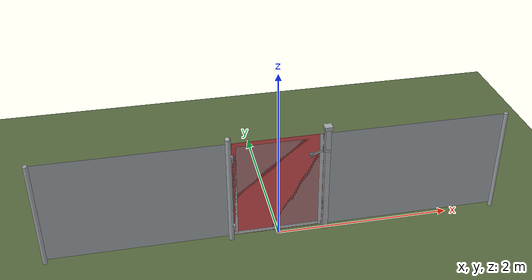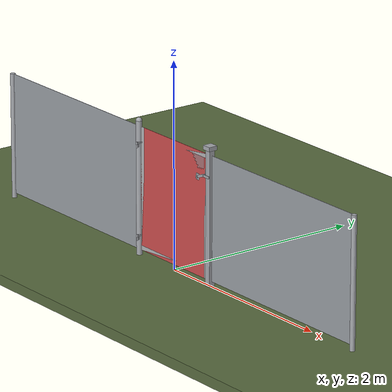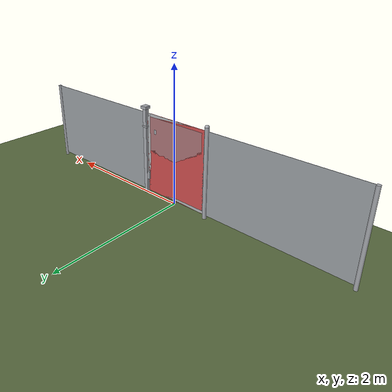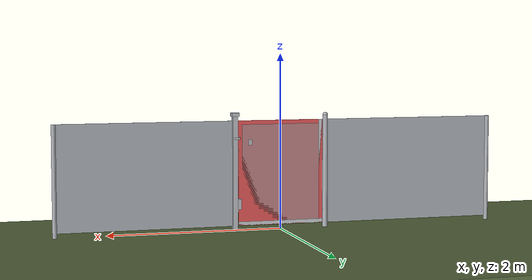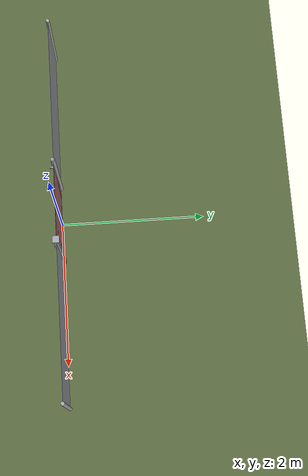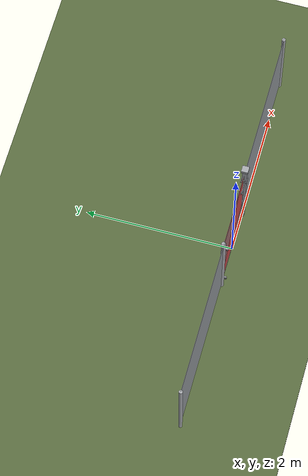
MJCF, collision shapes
<?xml version="1.0" ?>
<mujoco model="db0034_gate_swing_full">
  <compiler angle="radian" meshdir="../../hardware" texturedir="../../textures" autolimits="true" inertiafromgeom="false"/>
  <option timestep="0.002" integrator="implicitfast" cone="elliptic" impratio="10" noslip_iterations="3">
    <flag multiccd="enable"/>
  </option>
  <size memory="16M"/>
  <default>
    <geom condim="4" solref="0.005 1" solimp="0.95 0.99 0.001"/>
    <joint solreflimit="0.005 1" solimplimit="0.95 0.99 0.001"/>
    <tendon solreflimit="0.005 1"/>
    <equality solref="0.002 1"/>
  </default>
  <visual>
    <headlight ambient="0.4 0.4 0.4" diffuse="0.7 0.7 0.7" specular="0.2 0.2 0.2"/>
    <quality shadowsize="4096"/>
    <map znear="0.01" zfar="60"/>
  </visual>
  <asset>
    <mesh name="strap_hinge_3c1a7c1a5f" file="strap_hinge_3c1a7c1a5f.obj"/>
    <material name="mat_floor" rgba="0.35 0.42 0.25 1" specular="0.2" shininess="0.15" reflectance="0"/>
    <material name="mat_wall" rgba="0.78 0.76 0.7 1" specular="0.2" shininess="0.1" reflectance="0"/>
    <material name="mat_leaf" rgba="0.7 0.71 0.72 1" specular="0.74" shininess="0.5" reflectance="0.36"/>
    <material name="mat_mesh_infill" rgba="0.6 0.62 0.64 0.55" specular="0.68" shininess="0.3" reflectance="0.1"/>
    <material name="mat_hinge" rgba="0.65 0.66 0.68 1" specular="0.74" shininess="0.5" reflectance="0.36"/>
    <material name="mat_op_steel_galvanized" rgba="0.65 0.66 0.68 1" specular="0.74" shininess="0.5" reflectance="0.36"/>
    <material name="mat_frame" rgba="0.65 0.66 0.68 1" specular="0.74" shininess="0.5" reflectance="0.36"/>
    <material name="mat_fence_mesh" rgba="0.6 0.62 0.64 0.5" specular="0.68" shininess="0.3" reflectance="0.1"/>
    <texture name="skybox" type="skybox" builtin="gradient" rgb1="0.6 0.7 0.85" rgb2="0.9 0.92 0.95" width="256" height="256"/>
  </asset>
  <worldbody>
    <light name="sun" pos="1.5 -2.5 4" dir="-0.3 0.5 -0.8" directional="true" diffuse="0.8 0.8 0.8" specular="0.3 0.3 0.3" castshadow="true"/>
    <light name="fill" pos="-1.5 2.5 3" dir="0.3 -0.5 -0.7" directional="true" diffuse="0.35 0.35 0.4" castshadow="false"/>
    <camera name="robot_view" pos="0 -1.875 1.135" xyaxes="1 0 0 0 0.26963 0.962964" fovy="52"/>
    <camera name="far_view" pos="0 1.875 1.135" xyaxes="-1 0 0 0 -0.26963 0.962964" fovy="52"/>
    <camera name="iso" pos="1.425 -1.575 1.435" xyaxes="0.741536 0.670913 0 -0.242917 0.268487 0.932151" fovy="46"/>
    <camera name="detail_handle" pos="0.666 -0.8135 1.385" xyaxes="0.97561 0.219512 0 -0.070934 0.315262 0.94635" fovy="38"/>
    <geom name="floor" type="box" size="6 6 0.05" pos="0 0 -0.05" material="mat_floor" group="0" contype="1" conaffinity="1" friction="0.8 0.005 0.0001" density="2400"/>
    <geom name="hinge_pintle_0" type="cylinder" size="0.008 0.02" pos="-0.503 -0.05 0.174" material="mat_hinge" group="1" contype="0" conaffinity="0" density="7850"/>
    <geom name="hinge_pintle_1" type="cylinder" size="0.008 0.02" pos="-0.503 -0.05 1.074" material="mat_hinge" group="1" contype="0" conaffinity="0" density="7850"/>
    <geom name="post_hinge" type="cylinder" size="0.03 0.65" pos="-0.536 0 0.65" material="mat_frame" group="0" contype="1" conaffinity="1" friction="0.6 0.005 0.0001" density="800"/>
    <geom name="post_hinge_cap" type="sphere" size="0.03" pos="-0.536 0 1.3" material="mat_frame" group="1" contype="0" conaffinity="0" density="800"/>
    <geom name="post_latch" type="box" size="0.03 0.03 0.65" pos="0.536 0 0.65" material="mat_frame" group="0" contype="1" conaffinity="1" friction="0.6 0.005 0.0001" density="800"/>
    <geom name="post_latch_cap" type="box" size="0.045 0.045 0.02" pos="0.536 0 1.32" material="mat_frame" group="1" contype="0" conaffinity="0" density="800"/>
    <geom name="gate_stop" type="box" size="0.02 0.012 0.06" pos="0.486 0.0135 0.3" material="mat_frame" group="0" contype="1" conaffinity="1" friction="0.6 0.005 0.0001" density="800"/>
    <geom name="fence_l" type="box" size="1 0.002 0.6" pos="-1.566 0 0.65" material="mat_fence_mesh" group="0" contype="1" conaffinity="1" friction="0.6 0.005 0.0001" density="100"/>
    <geom name="fence_post_l" type="cylinder" size="0.025 0.625" pos="-2.566 0 0.625" material="mat_frame" group="0" contype="1" conaffinity="1" friction="0.6 0.005 0.0001" density="7850"/>
    <geom name="fence_r" type="box" size="1 0.002 0.6" pos="1.566 0 0.65" material="mat_fence_mesh" group="0" contype="1" conaffinity="1" friction="0.6 0.005 0.0001" density="100"/>
    <geom name="fence_post_r" type="cylinder" size="0.025 0.625" pos="2.566 0 0.625" material="mat_frame" group="0" contype="1" conaffinity="1" friction="0.6 0.005 0.0001" density="7850"/>
    <geom name="hinge_pintle_0_strap_0" type="box" size="0.0064 0.0065 0.016" pos="-0.503 -0.036 0.174" material="mat_hinge" group="1" contype="0" conaffinity="0" density="7850"/>
    <geom name="hinge_pintle_1_strap_0" type="box" size="0.0064 0.0065 0.016" pos="-0.503 -0.036 1.074" material="mat_hinge" group="1" contype="0" conaffinity="0" density="7850"/>
    <geom name="gate_stop_strap_0" type="box" size="0.0305 0.01255 0.048" pos="0.536 0.01055 0.3" material="mat_frame" group="1" contype="0" conaffinity="0" density="7850"/>
    <site name="approach_point" pos="0 -1.5 0" quat="1 0 0 0" size="0.05" rgba="0.2 0.9 0.2 0.5" group="4"/>
    <site name="goal_point" pos="0 1.5 0" quat="1 0 0 0" size="0.05" rgba="0.2 0.9 0.2 0.5" group="4"/>
    <site name="door_plane_center" pos="0 0 0.61" quat="1 0 0 0" size="0.02" rgba="0.2 0.9 0.2 0.5" group="4"/>
    <body name="leaf" pos="-0.506 0 0">
      <inertial pos="0.383021 -0.004185 0.663803" mass="4.533837" quat="0.455894 0.44848 0.54683 -0.540373" diaginertia="0.490568875 0.658353386 1.147894224"/>
      <joint name="leaf_hinge" type="hinge" axis="0 0 -1" pos="0.003 -0.05 0" limited="true" range="0 1.570796" damping="0.26672" frictionloss="0.14942" armature="0.02"/>
      <geom name="leaf_slab_col" type="box" size="0.5 0.0015 0.6" pos="0.503 0 0.65" material="mat_leaf" group="3" contype="1" conaffinity="1" rgba="0.8 0.3 0.3 0.25" friction="0.45 0.005 0.0001" density="1"/>
      <geom name="leaf_rail_b" type="box" size="0.5 0.0015 0.0225" pos="0.503 0 0.0725" material="mat_leaf" group="1" contype="0" conaffinity="0" density="1"/>
      <geom name="leaf_rail_t" type="box" size="0.5 0.0015 0.0225" pos="0.503 0 1.2275" material="mat_leaf" group="1" contype="0" conaffinity="0" density="1"/>
      <geom name="leaf_stile_h" type="box" size="0.0225 0.0015 0.6" pos="0.0255 0 0.65" material="mat_leaf" group="1" contype="0" conaffinity="0" density="1"/>
      <geom name="leaf_stile_l" type="box" size="0.0225 0.0015 0.6" pos="0.9805 0 0.65" material="mat_leaf" group="1" contype="0" conaffinity="0" density="1"/>
      <geom name="leaf_mesh" type="box" size="0.455 0.0015 0.555" pos="0.503 0 0.65" material="mat_mesh_infill" group="1" contype="0" conaffinity="0" density="1"/>
      <geom name="hinge_strap_0" type="mesh" mesh="strap_hinge_3c1a7c1a5f" pos="0.003 -0.0045 0.2" material="mat_hinge" group="1" contype="0" conaffinity="0" density="7850"/>
      <geom name="hinge_strap_eye_0" type="cylinder" size="0.011 0.012" pos="0.003 -0.05 0.2" material="mat_hinge" group="1" contype="0" conaffinity="0" density="7850"/>
      <geom name="hinge_strap_neck_0" type="box" size="0.012 0.02675 0.006" pos="0.003 -0.02725 0.2" material="mat_hinge" group="1" contype="0" conaffinity="0" density="7850"/>
      <geom name="hinge_strap_1" type="mesh" mesh="strap_hinge_3c1a7c1a5f" pos="0.003 -0.0045 1.1" material="mat_hinge" group="1" contype="0" conaffinity="0" density="7850"/>
      <geom name="hinge_strap_eye_1" type="cylinder" size="0.011 0.012" pos="0.003 -0.05 1.1" material="mat_hinge" group="1" contype="0" conaffinity="0" density="7850"/>
      <geom name="hinge_strap_neck_1" type="box" size="0.012 0.02675 0.006" pos="0.003 -0.02725 1.1" material="mat_hinge" group="1" contype="0" conaffinity="0" density="7850"/>
      <geom name="leaf_fork_strap_n" type="box" size="0.02 0.002 0.03" pos="0.863 -0.0035 1" material="mat_op_steel_galvanized" group="1" contype="0" conaffinity="0" density="7800"/>
      <geom name="leaf_fork_strap_p" type="box" size="0.02 0.002 0.03" pos="0.863 0.0035 1" material="mat_op_steel_galvanized" group="1" contype="0" conaffinity="0" density="7800"/>
      <geom name="leaf_fork_pin" type="cylinder" size="0.005 0.0135" pos="0.863 -0.008 1" quat="0.707107 -0.707107 0 0" material="mat_op_steel_galvanized" group="1" contype="0" conaffinity="0" density="7800"/>
      <site name="leaf_edge_mid" pos="1.003 0 0.6" quat="1 0 0 0" size="0.02" rgba="0.2 0.9 0.2 0.5" group="4"/>
      <body name="leaf_fork" pos="0.863 0 1">
        <inertial pos="0.108366 -0.006621 0.039297" mass="0.192163" quat="0.987007 -0.03015 -0.151391 0.044591" diaginertia="0.000146244 0.00076603 0.000850109"/>
        <joint name="leaf_fork_hinge" type="hinge" axis="0 -1 0" limited="true" range="0 1.2" damping="0.028928" frictionloss="0.004642" armature="0.0001"/>
        <geom name="leaf_fork_arm" type="box" size="0.069176 0.004 0.012" pos="0.0645 -0.0135 0.025" quat="0.982958 0 -0.183833 0" material="mat_op_steel_galvanized" group="0" contype="1" conaffinity="1" friction="0.6 0.005 0.0001" density="2500"/>
        <geom name="leaf_fork_eye" type="cylinder" size="0.014 0.005" pos="0 -0.0135 0" quat="0.707107 -0.707107 0 0" material="mat_op_steel_galvanized" group="1" contype="0" conaffinity="0" density="2500"/>
        <geom name="leaf_fork_tine_n" type="box" size="0.04 0.003 0.012" pos="0.169 -0.039 0.05" material="mat_op_steel_galvanized" group="0" contype="1" conaffinity="1" friction="0.6 0.005 0.0001" density="2500"/>
        <geom name="leaf_fork_tine_p" type="box" size="0.04 0.003 0.012" pos="0.169 0.039 0.05" material="mat_op_steel_galvanized" group="0" contype="1" conaffinity="1" friction="0.6 0.005 0.0001" density="2500"/>
        <geom name="leaf_fork_bridge" type="box" size="0.004 0.042 0.012" pos="0.129 0 0.05" material="mat_op_steel_galvanized" group="0" contype="1" conaffinity="1" friction="0.6 0.005 0.0001" density="2500"/>
        <geom name="leaf_fork_handle" type="capsule" size="0.006 0.018" pos="0.129 -0.0135 0.08" material="mat_op_steel_galvanized" group="0" contype="1" conaffinity="1" friction="0.7 0.01 0.0001" density="2500"/>
        <site name="leaf_fork_grip" pos="0.129 -0.0135 0.105" quat="1 0 0 0" size="0.012" rgba="0.2 0.9 0.2 0.5" group="4"/>
      </body>
    </body>
  </worldbody>
  <sensor>
    <jointpos name="leaf_hinge_pos" joint="leaf_hinge"/>
    <jointvel name="leaf_hinge_vel" joint="leaf_hinge"/>
    <jointpos name="leaf_fork_hinge_pos" joint="leaf_fork_hinge"/>
    <jointvel name="leaf_fork_hinge_vel" joint="leaf_fork_hinge"/>
  </sensor>
</mujoco>
